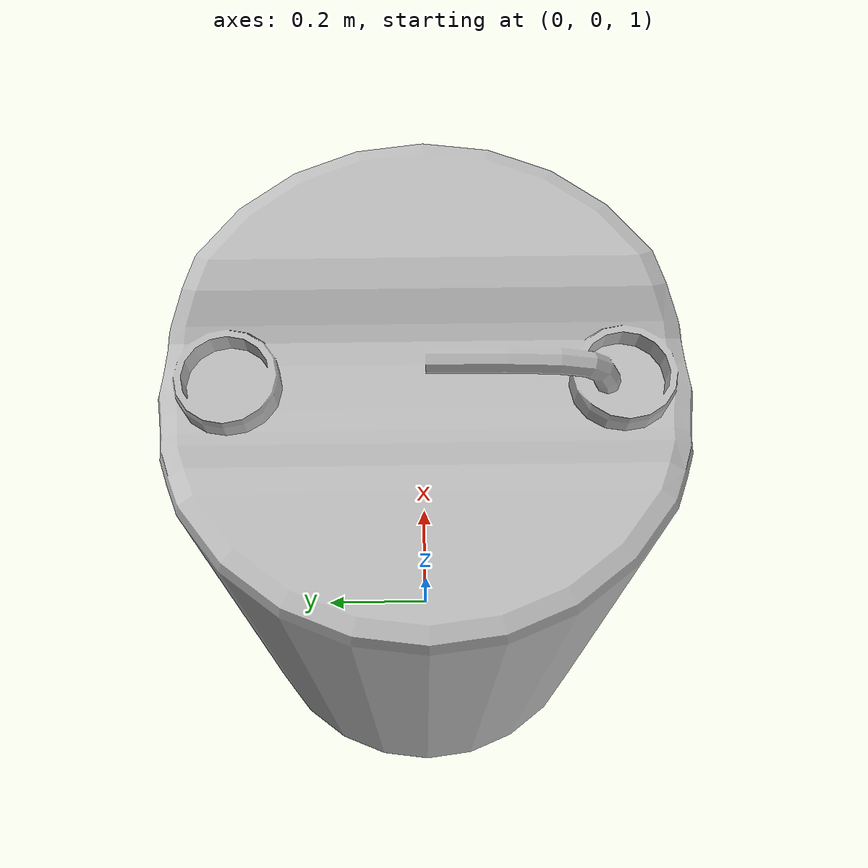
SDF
<?xml version="1.0" ?>
<sdf version="1.6">
  <model name="post">
    <pose>0 0 1 0 0 0</pose>
    <static>true</static>
    <link name="link">
      <collision name="collision">
        <geometry>
          <mesh>
            <uri>model://post/meshes/post.dae</uri>
          </mesh>
        </geometry>
      </collision>

      <visual name="visual">
        <geometry>
          <mesh>
            <uri>model://post/meshes/post.dae</uri>
          </mesh>
        </geometry>
      </visual>
    </link>
  </model>
</sdf>
